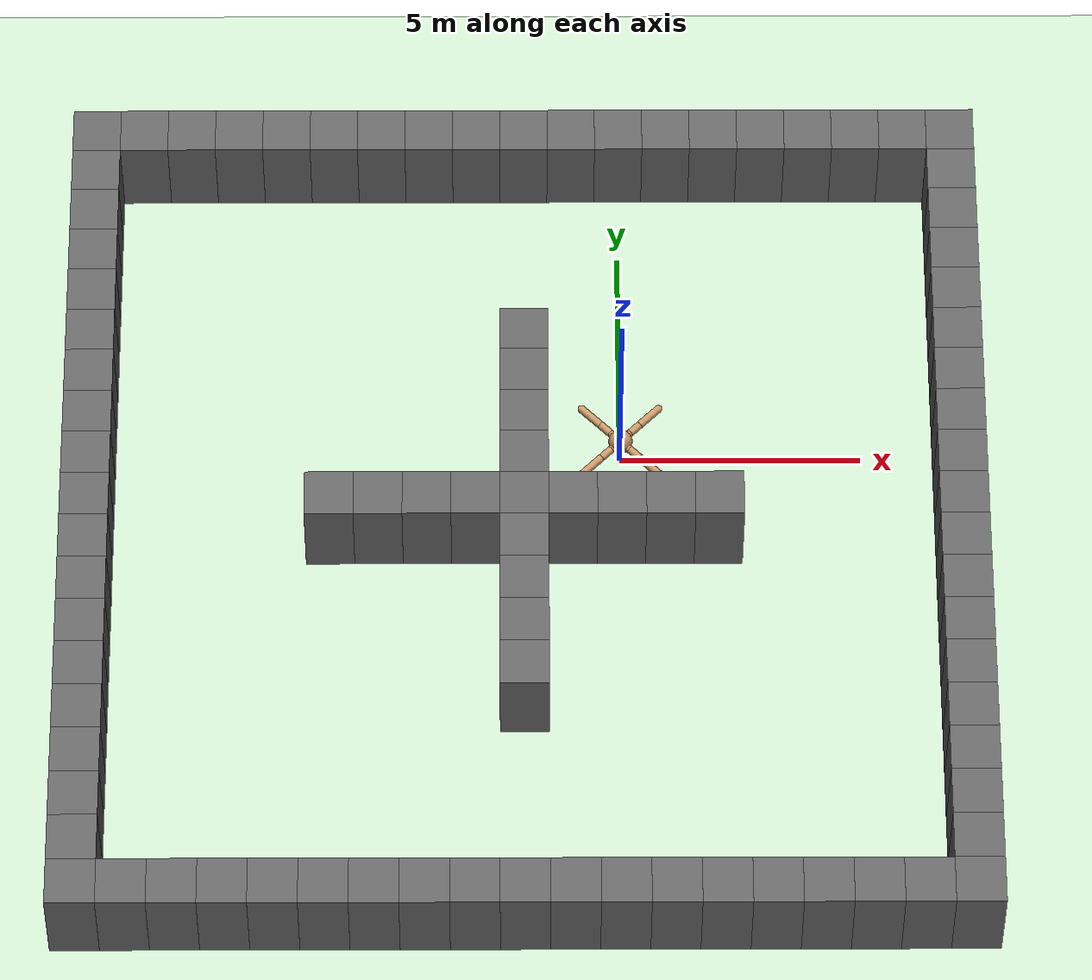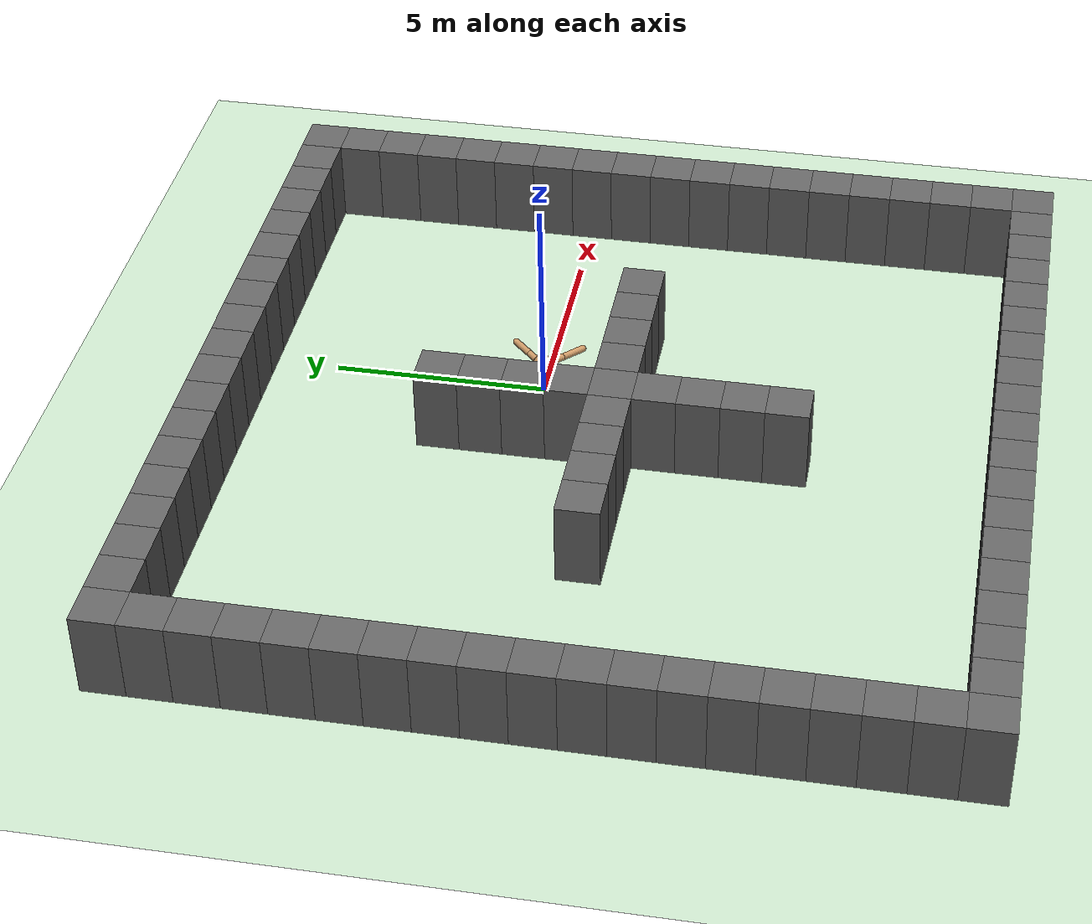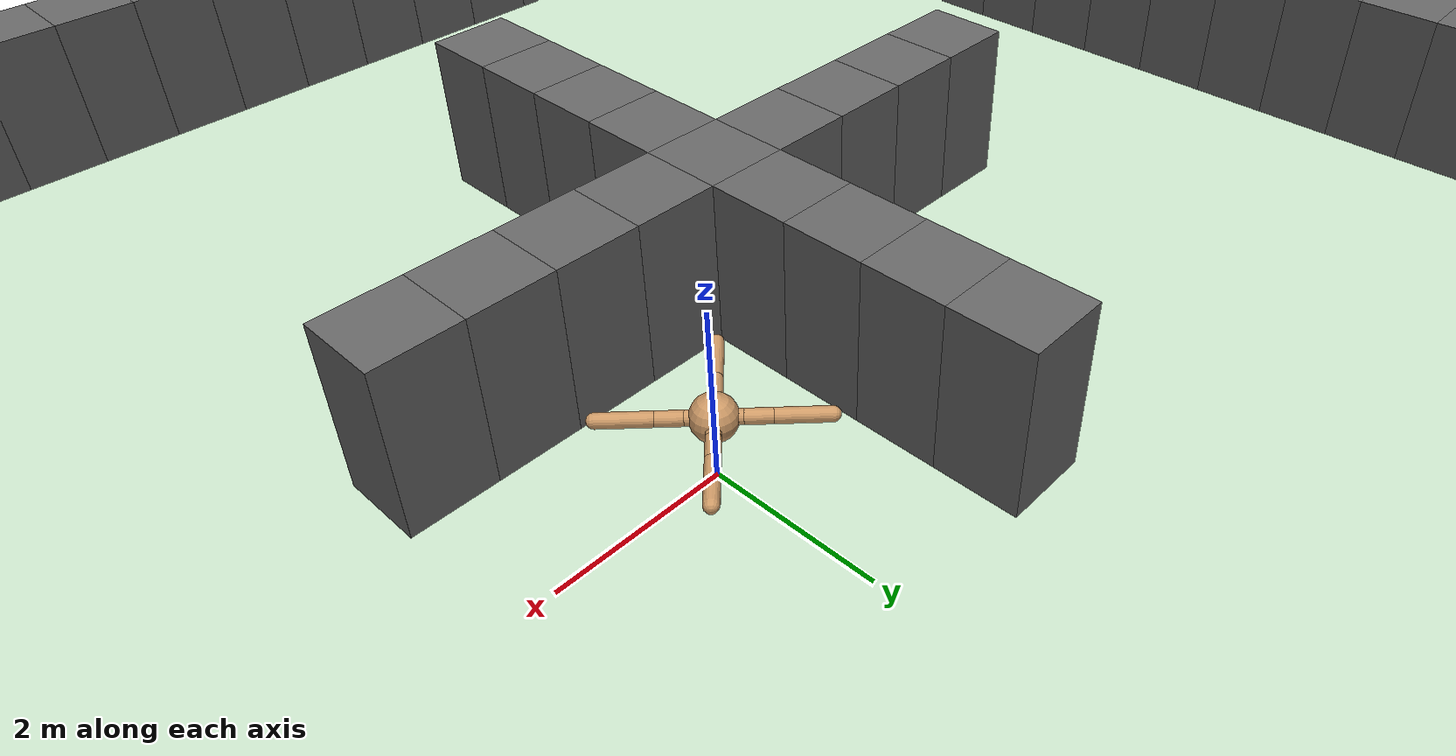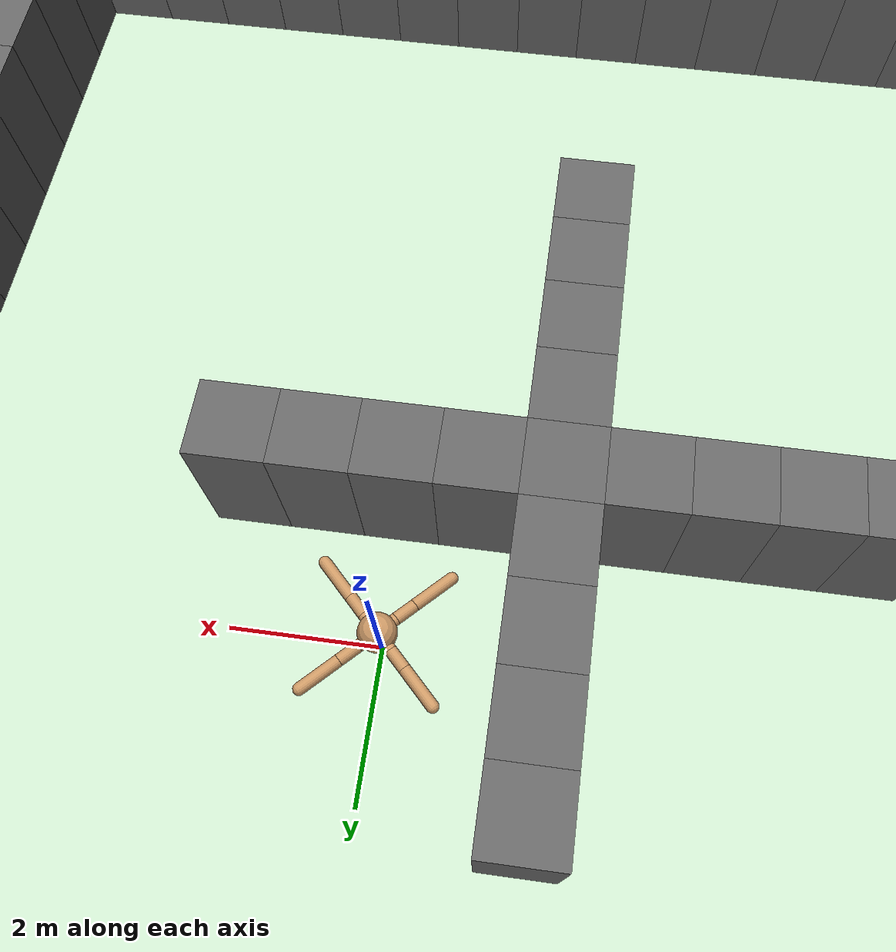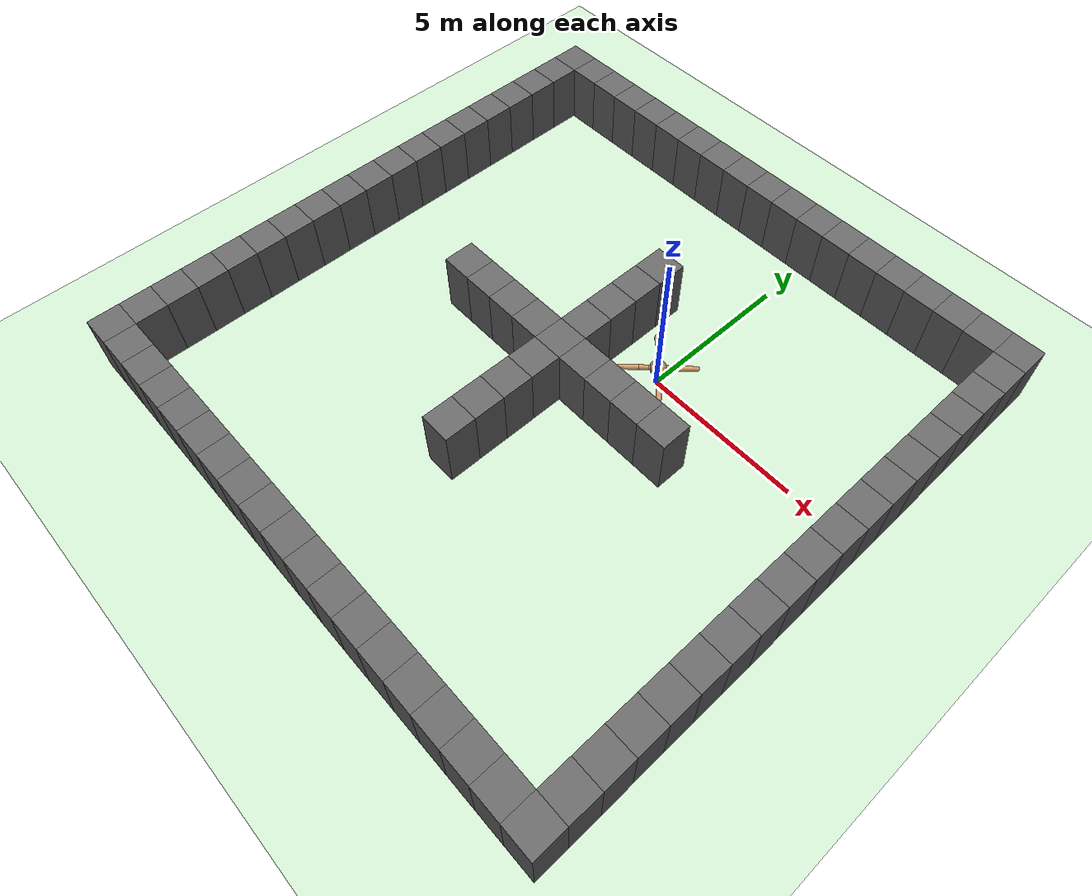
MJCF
<mujoco model="ant">
  <compiler angle="degree" coordinate="local" inertiafromgeom="true" />
  <option integrator="RK4" timestep="0.02" />
  <custom>
    <numeric data="0.0 0.0 0.55 1.0 0.0 0.0 0.0 0.0 1.0 0.0 -1.0 0.0 -1.0 0.0 1.0" name="init_qpos" />
  </custom>
  <default>
    <joint armature="1" damping="1" limited="true" />
    <geom conaffinity="0" condim="3" density="5.0" friction="1 0.5 0.5" margin="0.01" rgba="0.8 0.6 0.4 1" solimp=".8 .8 .01" solref=".02 1" />
  </default>
  <asset>
    <texture builtin="gradient" height="100" rgb1="1 1 1" rgb2="0 0 0" type="skybox" width="100" />
    <texture builtin="flat" height="1278" mark="cross" markrgb="1 1 1" name="texgeom" random="0.01" rgb1="0.8 0.6 0.4" rgb2="0.8 0.6 0.4" type="cube" width="127" />
    <texture builtin="checker" height="100" name="texplane" rgb1="0 0 0" rgb2="0.8 0.8 0.8" type="2d" width="100" />
    <material name="MatPlane" reflectance="0.5" shininess="1" specular="1" texrepeat="60 60" texture="texplane" />
    <material name="geom" texture="texgeom" texuniform="true" />
  </asset>
  <worldbody>
    <light cutoff="100" diffuse="1 1 1" dir="-0 0 -1.3" directional="true" exponent="1" pos="0 0 1.3" specular=".1 .1 .1" />
    <geom conaffinity="1" condim="3" name="floor" pos="0 0 0" rgba="0.8 0.9 0.8 1" size="40 40 40" type="plane" />
    <body name="torso" pos="0 0 0.75">
      <geom name="torso_geom" pos="0 0 0" size="0.25" type="sphere" />
      <joint armature="0" axis="0 0 1" damping="0" limited="false" margin="0.01" name="root" pos="0 0 0" type="free" />
      <body name="front_left_leg" pos="0 0 0">
        <geom fromto="0.0 0.0 0.0 0.2 0.2 0.0" name="aux_1_geom" size="0.08" type="capsule" />
        <body name="aux_1" pos="0.2 0.2 0">
          <joint axis="0 0 1" name="hip_1" pos="0.0 0.0 0.0" range="-30 30" type="hinge" />
          <geom fromto="0.0 0.0 0.0 0.2 0.2 0.0" name="left_leg_geom" size="0.08" type="capsule" />
          <body pos="0.2 0.2 0">
            <joint axis="-1 1 0" name="ankle_1" pos="0.0 0.0 0.0" range="30 70" type="hinge" />
            <geom fromto="0.0 0.0 0.0 0.4 0.4 0.0" name="left_ankle_geom" size="0.08" type="capsule" />
          </body>
        </body>
      </body>
      <body name="front_right_leg" pos="0 0 0">
        <geom fromto="0.0 0.0 0.0 -0.2 0.2 0.0" name="aux_2_geom" size="0.08" type="capsule" />
        <body name="aux_2" pos="-0.2 0.2 0">
          <joint axis="0 0 1" name="hip_2" pos="0.0 0.0 0.0" range="-30 30" type="hinge" />
          <geom fromto="0.0 0.0 0.0 -0.2 0.2 0.0" name="right_leg_geom" size="0.08" type="capsule" />
          <body pos="-0.2 0.2 0">
            <joint axis="1 1 0" name="ankle_2" pos="0.0 0.0 0.0" range="-70 -30" type="hinge" />
            <geom fromto="0.0 0.0 0.0 -0.4 0.4 0.0" name="right_ankle_geom" size="0.08" type="capsule" />
          </body>
        </body>
      </body>
      <body name="back_leg" pos="0 0 0">
        <geom fromto="0.0 0.0 0.0 -0.2 -0.2 0.0" name="aux_3_geom" size="0.08" type="capsule" />
        <body name="aux_3" pos="-0.2 -0.2 0">
          <joint axis="0 0 1" name="hip_3" pos="0.0 0.0 0.0" range="-30 30" type="hinge" />
          <geom fromto="0.0 0.0 0.0 -0.2 -0.2 0.0" name="back_leg_geom" size="0.08" type="capsule" />
          <body pos="-0.2 -0.2 0">
            <joint axis="-1 1 0" name="ankle_3" pos="0.0 0.0 0.0" range="-70 -30" type="hinge" />
            <geom fromto="0.0 0.0 0.0 -0.4 -0.4 0.0" name="third_ankle_geom" size="0.08" type="capsule" />
          </body>
        </body>
      </body>
      <body name="right_back_leg" pos="0 0 0">
        <geom fromto="0.0 0.0 0.0 0.2 -0.2 0.0" name="aux_4_geom" size="0.08" type="capsule" />
        <body name="aux_4" pos="0.2 -0.2 0">
          <joint axis="0 0 1" name="hip_4" pos="0.0 0.0 0.0" range="-30 30" type="hinge" />
          <geom fromto="0.0 0.0 0.0 0.2 -0.2 0.0" name="rightback_leg_geom" size="0.08" type="capsule" />
          <body pos="0.2 -0.2 0">
            <joint axis="1 1 0" name="ankle_4" pos="0.0 0.0 0.0" range="30 70" type="hinge" />
            <geom fromto="0.0 0.0 0.0 0.4 -0.4 0.0" name="fourth_ankle_geom" size="0.08" type="capsule" />
          </body>
        </body>
      </body>
    </body>

  <geom conaffinity="1" contype="1" material="" name="block_0_0" pos="-11.000000 -11.000000 1.000000" rgba="0.4 0.4 0.4 1" size="0.500000 0.500000 1.000000" type="box" /><geom conaffinity="1" contype="1" material="" name="block_0_1" pos="-10.000000 -11.000000 1.000000" rgba="0.4 0.4 0.4 1" size="0.500000 0.500000 1.000000" type="box" /><geom conaffinity="1" contype="1" material="" name="block_0_2" pos="-9.000000 -11.000000 1.000000" rgba="0.4 0.4 0.4 1" size="0.500000 0.500000 1.000000" type="box" /><geom conaffinity="1" contype="1" material="" name="block_0_3" pos="-8.000000 -11.000000 1.000000" rgba="0.4 0.4 0.4 1" size="0.500000 0.500000 1.000000" type="box" /><geom conaffinity="1" contype="1" material="" name="block_0_4" pos="-7.000000 -11.000000 1.000000" rgba="0.4 0.4 0.4 1" size="0.500000 0.500000 1.000000" type="box" /><geom conaffinity="1" contype="1" material="" name="block_0_5" pos="-6.000000 -11.000000 1.000000" rgba="0.4 0.4 0.4 1" size="0.500000 0.500000 1.000000" type="box" /><geom conaffinity="1" contype="1" material="" name="block_0_6" pos="-5.000000 -11.000000 1.000000" rgba="0.4 0.4 0.4 1" size="0.500000 0.500000 1.000000" type="box" /><geom conaffinity="1" contype="1" material="" name="block_0_7" pos="-4.000000 -11.000000 1.000000" rgba="0.4 0.4 0.4 1" size="0.500000 0.500000 1.000000" type="box" /><geom conaffinity="1" contype="1" material="" name="block_0_8" pos="-3.000000 -11.000000 1.000000" rgba="0.4 0.4 0.4 1" size="0.500000 0.500000 1.000000" type="box" /><geom conaffinity="1" contype="1" material="" name="block_0_9" pos="-2.000000 -11.000000 1.000000" rgba="0.4 0.4 0.4 1" size="0.500000 0.500000 1.000000" type="box" /><geom conaffinity="1" contype="1" material="" name="block_0_10" pos="-1.000000 -11.000000 1.000000" rgba="0.4 0.4 0.4 1" size="0.500000 0.500000 1.000000" type="box" /><geom conaffinity="1" contype="1" material="" name="block_0_11" pos="0.000000 -11.000000 1.000000" rgba="0.4 0.4 0.4 1" size="0.500000 0.500000 1.000000" type="box" /><geom conaffinity="1" contype="1" material="" name="block_0_12" pos="1.000000 -11.000000 1.000000" rgba="0.4 0.4 0.4 1" size="0.500000 0.500000 1.000000" type="box" /><geom conaffinity="1" contype="1" material="" name="block_0_13" pos="2.000000 -11.000000 1.000000" rgba="0.4 0.4 0.4 1" size="0.500000 0.500000 1.000000" type="box" /><geom conaffinity="1" contype="1" material="" name="block_0_14" pos="3.000000 -11.000000 1.000000" rgba="0.4 0.4 0.4 1" size="0.500000 0.500000 1.000000" type="box" /><geom conaffinity="1" contype="1" material="" name="block_0_15" pos="4.000000 -11.000000 1.000000" rgba="0.4 0.4 0.4 1" size="0.500000 0.500000 1.000000" type="box" /><geom conaffinity="1" contype="1" material="" name="block_0_16" pos="5.000000 -11.000000 1.000000" rgba="0.4 0.4 0.4 1" size="0.500000 0.500000 1.000000" type="box" /><geom conaffinity="1" contype="1" material="" name="block_0_17" pos="6.000000 -11.000000 1.000000" rgba="0.4 0.4 0.4 1" size="0.500000 0.500000 1.000000" type="box" /><geom conaffinity="1" contype="1" material="" name="block_0_18" pos="7.000000 -11.000000 1.000000" rgba="0.4 0.4 0.4 1" size="0.500000 0.500000 1.000000" type="box" /><geom conaffinity="1" contype="1" material="" name="block_1_0" pos="-11.000000 -10.000000 1.000000" rgba="0.4 0.4 0.4 1" size="0.500000 0.500000 1.000000" type="box" /><geom conaffinity="1" contype="1" material="" name="block_1_18" pos="7.000000 -10.000000 1.000000" rgba="0.4 0.4 0.4 1" size="0.500000 0.500000 1.000000" type="box" /><geom conaffinity="1" contype="1" material="" name="block_2_0" pos="-11.000000 -9.000000 1.000000" rgba="0.4 0.4 0.4 1" size="0.500000 0.500000 1.000000" type="box" /><geom conaffinity="1" contype="1" material="" name="block_2_18" pos="7.000000 -9.000000 1.000000" rgba="0.4 0.4 0.4 1" size="0.500000 0.500000 1.000000" type="box" /><geom conaffinity="1" contype="1" material="" name="block_3_0" pos="-11.000000 -8.000000 1.000000" rgba="0.4 0.4 0.4 1" size="0.500000 0.500000 1.000000" type="box" /><geom conaffinity="1" contype="1" material="" name="block_3_18" pos="7.000000 -8.000000 1.000000" rgba="0.4 0.4 0.4 1" size="0.500000 0.500000 1.000000" type="box" /><geom conaffinity="1" contype="1" material="" name="block_4_0" pos="-11.000000 -7.000000 1.000000" rgba="0.4 0.4 0.4 1" size="0.500000 0.500000 1.000000" type="box" /><geom conaffinity="1" contype="1" material="" name="block_4_18" pos="7.000000 -7.000000 1.000000" rgba="0.4 0.4 0.4 1" size="0.500000 0.500000 1.000000" type="box" /><geom conaffinity="1" contype="1" material="" name="block_5_0" pos="-11.000000 -6.000000 1.000000" rgba="0.4 0.4 0.4 1" size="0.500000 0.500000 1.000000" type="box" /><geom conaffinity="1" contype="1" material="" name="block_5_9" pos="-2.000000 -6.000000 1.000000" rgba="0.4 0.4 0.4 1" size="0.500000 0.500000 1.000000" type="box" /><geom conaffinity="1" contype="1" material="" name="block_5_18" pos="7.000000 -6.000000 1.000000" rgba="0.4 0.4 0.4 1" size="0.500000 0.500000 1.000000" type="box" /><geom conaffinity="1" contype="1" material="" name="block_6_0" pos="-11.000000 -5.000000 1.000000" rgba="0.4 0.4 0.4 1" size="0.500000 0.500000 1.000000" type="box" /><geom conaffinity="1" contype="1" material="" name="block_6_9" pos="-2.000000 -5.000000 1.000000" rgba="0.4 0.4 0.4 1" size="0.500000 0.500000 1.000000" type="box" /><geom conaffinity="1" contype="1" material="" name="block_6_18" pos="7.000000 -5.000000 1.000000" rgba="0.4 0.4 0.4 1" size="0.500000 0.500000 1.000000" type="box" /><geom conaffinity="1" contype="1" material="" name="block_7_0" pos="-11.000000 -4.000000 1.000000" rgba="0.4 0.4 0.4 1" size="0.500000 0.500000 1.000000" type="box" /><geom conaffinity="1" contype="1" material="" name="block_7_9" pos="-2.000000 -4.000000 1.000000" rgba="0.4 0.4 0.4 1" size="0.500000 0.500000 1.000000" type="box" /><geom conaffinity="1" contype="1" material="" name="block_7_18" pos="7.000000 -4.000000 1.000000" rgba="0.4 0.4 0.4 1" size="0.500000 0.500000 1.000000" type="box" /><geom conaffinity="1" contype="1" material="" name="block_8_0" pos="-11.000000 -3.000000 1.000000" rgba="0.4 0.4 0.4 1" size="0.500000 0.500000 1.000000" type="box" /><geom conaffinity="1" contype="1" material="" name="block_8_9" pos="-2.000000 -3.000000 1.000000" rgba="0.4 0.4 0.4 1" size="0.500000 0.500000 1.000000" type="box" /><geom conaffinity="1" contype="1" material="" name="block_8_18" pos="7.000000 -3.000000 1.000000" rgba="0.4 0.4 0.4 1" size="0.500000 0.500000 1.000000" type="box" /><geom conaffinity="1" contype="1" material="" name="block_9_0" pos="-11.000000 -2.000000 1.000000" rgba="0.4 0.4 0.4 1" size="0.500000 0.500000 1.000000" type="box" /><geom conaffinity="1" contype="1" material="" name="block_9_5" pos="-6.000000 -2.000000 1.000000" rgba="0.4 0.4 0.4 1" size="0.500000 0.500000 1.000000" type="box" /><geom conaffinity="1" contype="1" material="" name="block_9_6" pos="-5.000000 -2.000000 1.000000" rgba="0.4 0.4 0.4 1" size="0.500000 0.500000 1.000000" type="box" /><geom conaffinity="1" contype="1" material="" name="block_9_7" pos="-4.000000 -2.000000 1.000000" rgba="0.4 0.4 0.4 1" size="0.500000 0.500000 1.000000" type="box" /><geom conaffinity="1" contype="1" material="" name="block_9_8" pos="-3.000000 -2.000000 1.000000" rgba="0.4 0.4 0.4 1" size="0.500000 0.500000 1.000000" type="box" /><geom conaffinity="1" contype="1" material="" name="block_9_9" pos="-2.000000 -2.000000 1.000000" rgba="0.4 0.4 0.4 1" size="0.500000 0.500000 1.000000" type="box" /><geom conaffinity="1" contype="1" material="" name="block_9_10" pos="-1.000000 -2.000000 1.000000" rgba="0.4 0.4 0.4 1" size="0.500000 0.500000 1.000000" type="box" /><geom conaffinity="1" contype="1" material="" name="block_9_11" pos="0.000000 -2.000000 1.000000" rgba="0.4 0.4 0.4 1" size="0.500000 0.500000 1.000000" type="box" /><geom conaffinity="1" contype="1" material="" name="block_9_12" pos="1.000000 -2.000000 1.000000" rgba="0.4 0.4 0.4 1" size="0.500000 0.500000 1.000000" type="box" /><geom conaffinity="1" contype="1" material="" name="block_9_13" pos="2.000000 -2.000000 1.000000" rgba="0.4 0.4 0.4 1" size="0.500000 0.500000 1.000000" type="box" /><geom conaffinity="1" contype="1" material="" name="block_9_18" pos="7.000000 -2.000000 1.000000" rgba="0.4 0.4 0.4 1" size="0.500000 0.500000 1.000000" type="box" /><geom conaffinity="1" contype="1" material="" name="block_10_0" pos="-11.000000 -1.000000 1.000000" rgba="0.4 0.4 0.4 1" size="0.500000 0.500000 1.000000" type="box" /><geom conaffinity="1" contype="1" material="" name="block_10_9" pos="-2.000000 -1.000000 1.000000" rgba="0.4 0.4 0.4 1" size="0.500000 0.500000 1.000000" type="box" /><geom conaffinity="1" contype="1" material="" name="block_10_18" pos="7.000000 -1.000000 1.000000" rgba="0.4 0.4 0.4 1" size="0.500000 0.500000 1.000000" type="box" /><geom conaffinity="1" contype="1" material="" name="block_11_0" pos="-11.000000 0.000000 1.000000" rgba="0.4 0.4 0.4 1" size="0.500000 0.500000 1.000000" type="box" /><geom conaffinity="1" contype="1" material="" name="block_11_9" pos="-2.000000 0.000000 1.000000" rgba="0.4 0.4 0.4 1" size="0.500000 0.500000 1.000000" type="box" /><geom conaffinity="1" contype="1" material="" name="block_11_18" pos="7.000000 0.000000 1.000000" rgba="0.4 0.4 0.4 1" size="0.500000 0.500000 1.000000" type="box" /><geom conaffinity="1" contype="1" material="" name="block_12_0" pos="-11.000000 1.000000 1.000000" rgba="0.4 0.4 0.4 1" size="0.500000 0.500000 1.000000" type="box" /><geom conaffinity="1" contype="1" material="" name="block_12_9" pos="-2.000000 1.000000 1.000000" rgba="0.4 0.4 0.4 1" size="0.500000 0.500000 1.000000" type="box" /><geom conaffinity="1" contype="1" material="" name="block_12_18" pos="7.000000 1.000000 1.000000" rgba="0.4 0.4 0.4 1" size="0.500000 0.500000 1.000000" type="box" /><geom conaffinity="1" contype="1" material="" name="block_13_0" pos="-11.000000 2.000000 1.000000" rgba="0.4 0.4 0.4 1" size="0.500000 0.500000 1.000000" type="box" /><geom conaffinity="1" contype="1" material="" name="block_13_9" pos="-2.000000 2.000000 1.000000" rgba="0.4 0.4 0.4 1" size="0.500000 0.500000 1.000000" type="box" /><geom conaffinity="1" contype="1" material="" name="block_13_18" pos="7.000000 2.000000 1.000000" rgba="0.4 0.4 0.4 1" size="0.500000 0.500000 1.000000" type="box" /><geom conaffinity="1" contype="1" material="" name="block_14_0" pos="-11.000000 3.000000 1.000000" rgba="0.4 0.4 0.4 1" size="0.500000 0.500000 1.000000" type="box" /><geom conaffinity="1" contype="1" material="" name="block_14_18" pos="7.000000 3.000000 1.000000" rgba="0.4 0.4 0.4 1" size="0.500000 0.500000 1.000000" type="box" /><geom conaffinity="1" contype="1" material="" name="block_15_0" pos="-11.000000 4.000000 1.000000" rgba="0.4 0.4 0.4 1" size="0.500000 0.500000 1.000000" type="box" /><geom conaffinity="1" contype="1" material="" name="block_15_18" pos="7.000000 4.000000 1.000000" rgba="0.4 0.4 0.4 1" size="0.500000 0.500000 1.000000" type="box" /><geom conaffinity="1" contype="1" material="" name="block_16_0" pos="-11.000000 5.000000 1.000000" rgba="0.4 0.4 0.4 1" size="0.500000 0.500000 1.000000" type="box" /><geom conaffinity="1" contype="1" material="" name="block_16_18" pos="7.000000 5.000000 1.000000" rgba="0.4 0.4 0.4 1" size="0.500000 0.500000 1.000000" type="box" /><geom conaffinity="1" contype="1" material="" name="block_17_0" pos="-11.000000 6.000000 1.000000" rgba="0.4 0.4 0.4 1" size="0.500000 0.500000 1.000000" type="box" /><geom conaffinity="1" contype="1" material="" name="block_17_18" pos="7.000000 6.000000 1.000000" rgba="0.4 0.4 0.4 1" size="0.500000 0.500000 1.000000" type="box" /><geom conaffinity="1" contype="1" material="" name="block_18_0" pos="-11.000000 7.000000 1.000000" rgba="0.4 0.4 0.4 1" size="0.500000 0.500000 1.000000" type="box" /><geom conaffinity="1" contype="1" material="" name="block_18_1" pos="-10.000000 7.000000 1.000000" rgba="0.4 0.4 0.4 1" size="0.500000 0.500000 1.000000" type="box" /><geom conaffinity="1" contype="1" material="" name="block_18_2" pos="-9.000000 7.000000 1.000000" rgba="0.4 0.4 0.4 1" size="0.500000 0.500000 1.000000" type="box" /><geom conaffinity="1" contype="1" material="" name="block_18_3" pos="-8.000000 7.000000 1.000000" rgba="0.4 0.4 0.4 1" size="0.500000 0.500000 1.000000" type="box" /><geom conaffinity="1" contype="1" material="" name="block_18_4" pos="-7.000000 7.000000 1.000000" rgba="0.4 0.4 0.4 1" size="0.500000 0.500000 1.000000" type="box" /><geom conaffinity="1" contype="1" material="" name="block_18_5" pos="-6.000000 7.000000 1.000000" rgba="0.4 0.4 0.4 1" size="0.500000 0.500000 1.000000" type="box" /><geom conaffinity="1" contype="1" material="" name="block_18_6" pos="-5.000000 7.000000 1.000000" rgba="0.4 0.4 0.4 1" size="0.500000 0.500000 1.000000" type="box" /><geom conaffinity="1" contype="1" material="" name="block_18_7" pos="-4.000000 7.000000 1.000000" rgba="0.4 0.4 0.4 1" size="0.500000 0.500000 1.000000" type="box" /><geom conaffinity="1" contype="1" material="" name="block_18_8" pos="-3.000000 7.000000 1.000000" rgba="0.4 0.4 0.4 1" size="0.500000 0.500000 1.000000" type="box" /><geom conaffinity="1" contype="1" material="" name="block_18_9" pos="-2.000000 7.000000 1.000000" rgba="0.4 0.4 0.4 1" size="0.500000 0.500000 1.000000" type="box" /><geom conaffinity="1" contype="1" material="" name="block_18_10" pos="-1.000000 7.000000 1.000000" rgba="0.4 0.4 0.4 1" size="0.500000 0.500000 1.000000" type="box" /><geom conaffinity="1" contype="1" material="" name="block_18_11" pos="0.000000 7.000000 1.000000" rgba="0.4 0.4 0.4 1" size="0.500000 0.500000 1.000000" type="box" /><geom conaffinity="1" contype="1" material="" name="block_18_12" pos="1.000000 7.000000 1.000000" rgba="0.4 0.4 0.4 1" size="0.500000 0.500000 1.000000" type="box" /><geom conaffinity="1" contype="1" material="" name="block_18_13" pos="2.000000 7.000000 1.000000" rgba="0.4 0.4 0.4 1" size="0.500000 0.500000 1.000000" type="box" /><geom conaffinity="1" contype="1" material="" name="block_18_14" pos="3.000000 7.000000 1.000000" rgba="0.4 0.4 0.4 1" size="0.500000 0.500000 1.000000" type="box" /><geom conaffinity="1" contype="1" material="" name="block_18_15" pos="4.000000 7.000000 1.000000" rgba="0.4 0.4 0.4 1" size="0.500000 0.500000 1.000000" type="box" /><geom conaffinity="1" contype="1" material="" name="block_18_16" pos="5.000000 7.000000 1.000000" rgba="0.4 0.4 0.4 1" size="0.500000 0.500000 1.000000" type="box" /><geom conaffinity="1" contype="1" material="" name="block_18_17" pos="6.000000 7.000000 1.000000" rgba="0.4 0.4 0.4 1" size="0.500000 0.500000 1.000000" type="box" /><geom conaffinity="1" contype="1" material="" name="block_18_18" pos="7.000000 7.000000 1.000000" rgba="0.4 0.4 0.4 1" size="0.500000 0.500000 1.000000" type="box" /></worldbody>
  <actuator>
    <motor ctrllimited="true" ctrlrange="-1.0 1.0" gear="150" joint="hip_4" />
    <motor ctrllimited="true" ctrlrange="-1.0 1.0" gear="150" joint="ankle_4" />
    <motor ctrllimited="true" ctrlrange="-1.0 1.0" gear="150" joint="hip_1" />
    <motor ctrllimited="true" ctrlrange="-1.0 1.0" gear="150" joint="ankle_1" />
    <motor ctrllimited="true" ctrlrange="-1.0 1.0" gear="150" joint="hip_2" />
    <motor ctrllimited="true" ctrlrange="-1.0 1.0" gear="150" joint="ankle_2" />
    <motor ctrllimited="true" ctrlrange="-1.0 1.0" gear="150" joint="hip_3" />
    <motor ctrllimited="true" ctrlrange="-1.0 1.0" gear="150" joint="ankle_3" />
  </actuator>
</mujoco>
